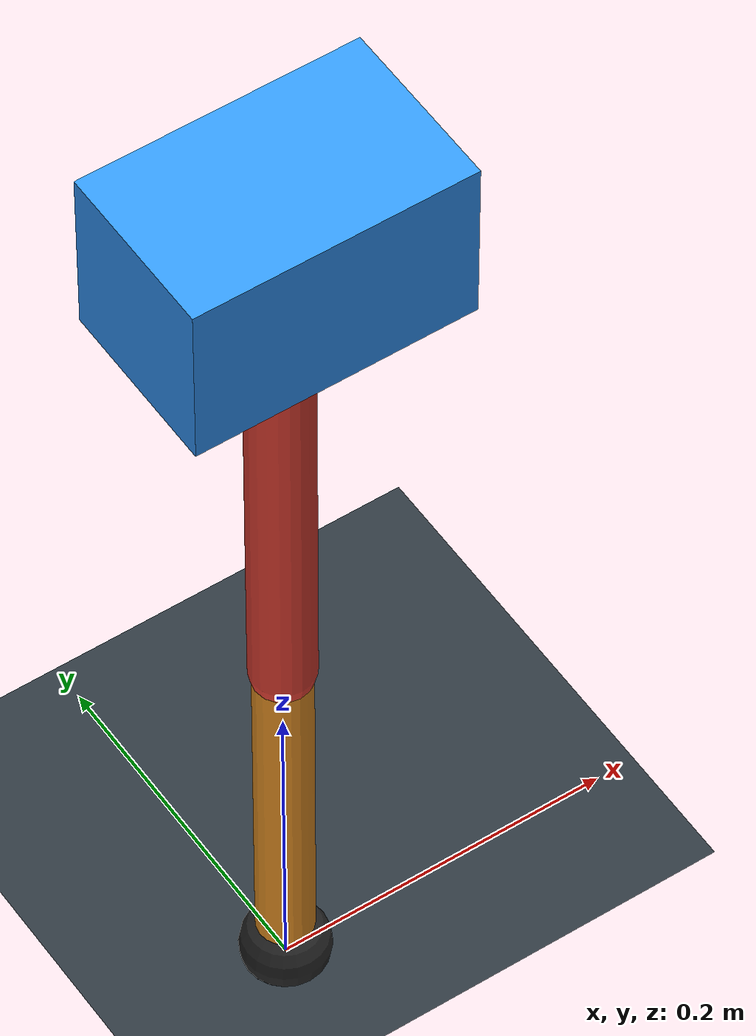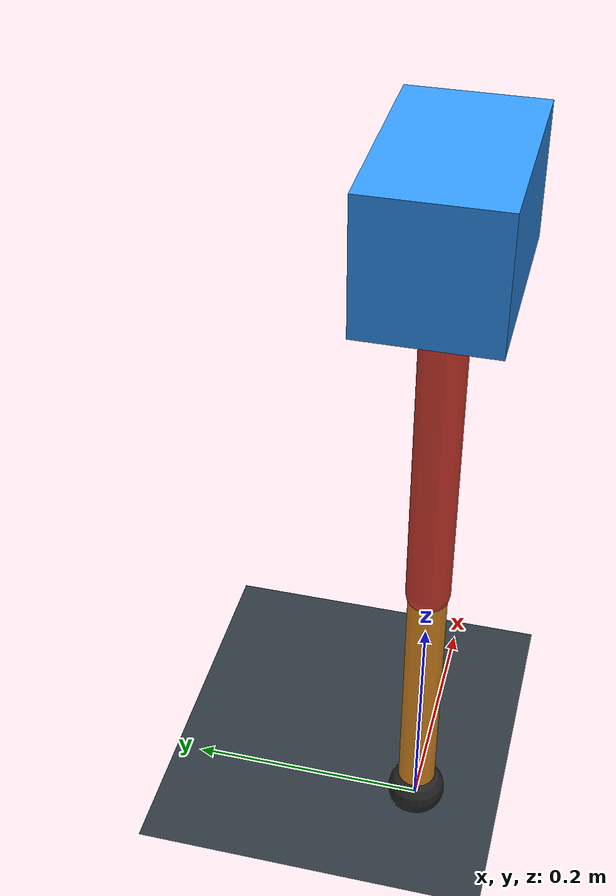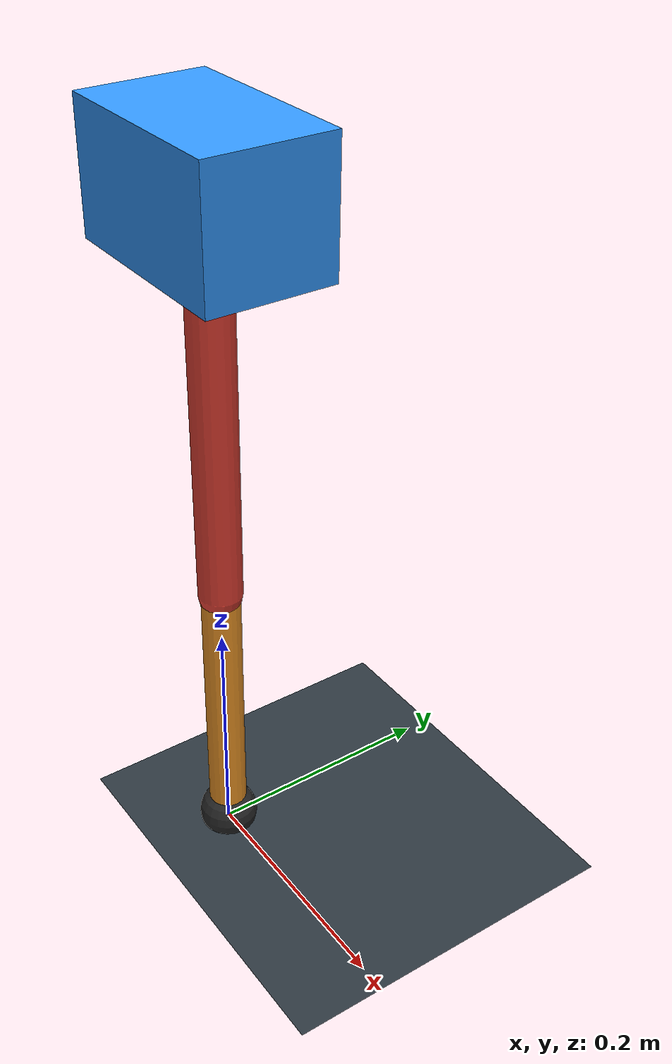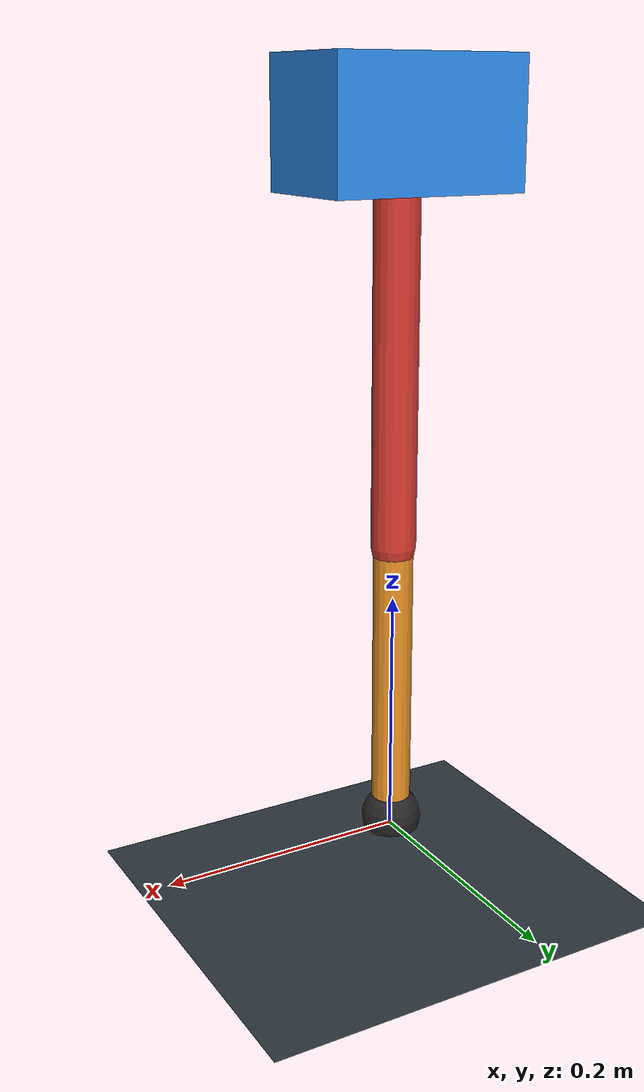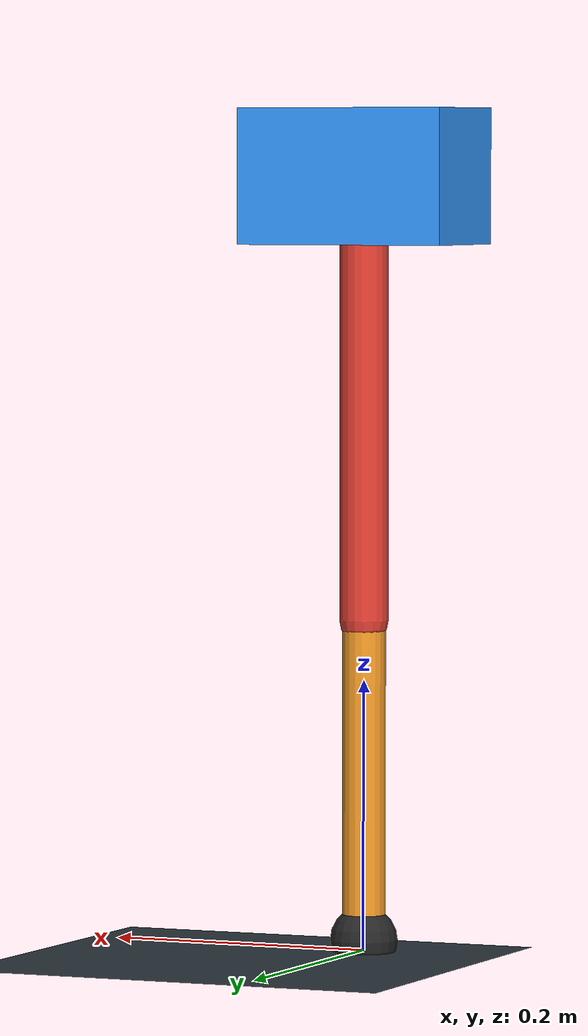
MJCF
<mujoco model="single_axis_two_bar">
  <compiler angle="radian" inertiafromgeom="true"/>
  <option timestep="0.001" integrator="implicitfast" gravity="0 0 -9.81"/>
  <default>
    <joint damping="0.08"/>
    <geom friction="1.2 0.01 0.0001" condim="3"/>
  </default>
  <worldbody>
    <geom name="floor" type="plane" size="5 5 0.1" rgba="0.18 0.22 0.25 1"/>
    <body name="carriage" pos="0 0 0.5712293663538929">
      <joint name="pole_slide" type="slide" axis="0 0 1"/>
      <geom name="payload" type="box" size="0.08 0.05 0.05" mass="2.361276880831819" rgba="0.2 0.6 1 1"/>
      <body name="thigh" pos="0 0 0">
        <joint name="hip" type="hinge" axis="0 1 0"/>
        <geom name="thigh_link" type="capsule" fromto="0 0 0 0 0 -0.3267484737840753" size="0.018" mass="0.2328126051712999" rgba="0.9 0.25 0.2 1"/>
        <body name="shank" pos="0 0 -0.3267484737840753">
          <joint name="knee" type="hinge" axis="0 1 0"/>
          <geom name="shank_link" type="capsule" fromto="0 0 0 0 0 -0.23637458431272146" size="0.016" mass="0.16842001473737198" rgba="0.95 0.6 0.15 1"/>
          <geom name="foot" type="sphere" pos="0 0 -0.23637458431272146" size="0.025" mass="0.03" rgba="0.15 0.15 0.15 1"/>
          <site name="toe" pos="0 0 -0.23637458431272146" size="0.008"/>
        </body>
      </body>
    </body>
  </worldbody>
  <actuator>
    <motor name="hip_motor" joint="hip" ctrlrange="-38.00024307628522 38.00024307628522"/>
    <motor name="knee_motor" joint="knee" ctrlrange="-104.58594025040514 104.58594025040514"/>
  </actuator>
</mujoco>
